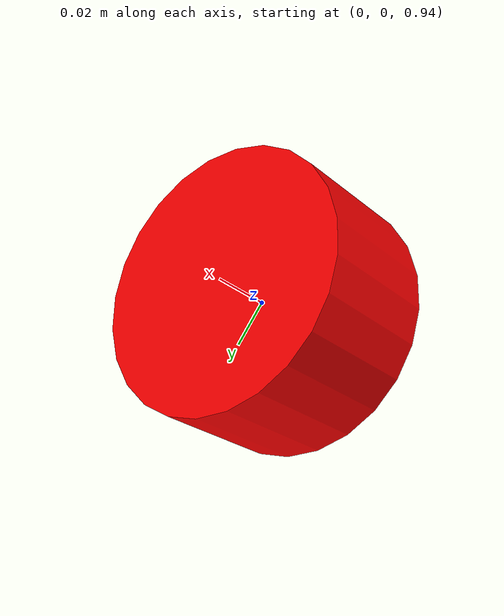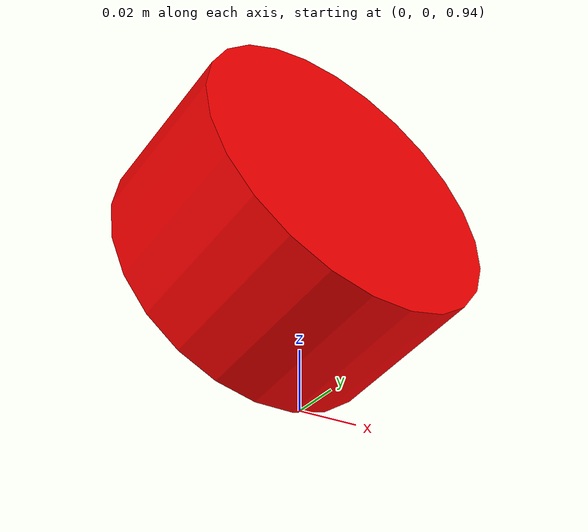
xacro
<?xml version="1.0"?>
<robot xmlns:xacro="http://www.ros.org/wiki/xacro"  name="robot">

    <xacro:arg name="lidar_base_offset_z" default="1"/>

    <xacro:include filename="base_core.xacro" />

    <xacro:include filename="../lidar.xacro"/>

    <xacro:include filename="../imu.xacro" />

</robot>

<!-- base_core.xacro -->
<robot name="robot_core" xmlns:xacro="http://ros.org/wiki/xacro">

  <!-- Robot Base link -->
  <!-- The base link is empty because it can't have inertia parameters
   to run correctly in Gazebo and also because is a ROS standard to
   always have a 'base_link' -->
  <link name="world">
  </link>

  <link name="base_link">
  </link>

  <joint name="base_to_world_joint" type="fixed">
    <parent link="world"/>
    <child link="base_link"/>
    <origin xyz="0 0 0" rpy="0 0 0"/>
  </joint>

</robot>

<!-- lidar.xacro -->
<robot xmlns:xacro="http://www.ros.org/wiki/xacro" name="robot">

  <xacro:property name="lidar_model" value="ouster-os0"/>
  <xacro:arg name="lidar_base_offset_z" default="0.205"/>
  <xacro:arg name="lidar_inclination" default="${pi/4}"/>

  <xacro:macro name="cylinder_inertia" params="m r h">
    <inertial>
      <origin xyz="0 0 0" rpy="${pi/2} 0 0"/>
      <mass value="${m}"/>
      <inertia
        ixx="${(m/12)*(3*r*r + h*h)}"
        ixy="0" ixz="0"
        iyy="${(m/12)*(3*r*r + h*h)}"
        iyz="0"
        izz="${(m/2)*(r*r)}"/>
    </inertial>
  </xacro:macro>

  <xacro:macro name="lidar_parameters" params="samp res min_ang max_ang">
    <samples>${samp}</samples>
    <resolution>${res}</resolution>
    <min_angle>${min_ang}</min_angle>
    <max_angle>${max_ang}</max_angle>
  </xacro:macro>

  <joint name="lidar_base_joint" type="fixed">
    <parent link="base_link"/>
    <child link="lidar_link"/>
    <origin xyz="0 0 $(arg lidar_base_offset_z)" rpy="0 $(arg lidar_inclination) 0"/>
  </joint>

  <link name="lidar_link">
    <visual>
      <origin xyz="0 0 0" rpy="0 0 0"/>
      <geometry>
        <cylinder length="0.05" radius="0.05"/>
      </geometry>
      <material name="red">
        <color rgba="1 0 0 1.0"/>
      </material>
    </visual>
    <collision>
      <geometry>
        <cylinder length="0.05" radius="0.05"/>
      </geometry>
    </collision>
    <xacro:cylinder_inertia m="0.1" r="0.05" h="0.05"/>
  </link>

  <gazebo>
    <plugin filename="gz-sim-sensors-system" name="gz::sim::systems::Sensors">
      <render_engine>ogre2</render_engine>
    </plugin>
  </gazebo>

  <gazebo reference="lidar_link">
    <sensor name="gpu_lidar" type="gpu_lidar">
      <topic>/lidar</topic>
      <gz_frame_id>lidar_link</gz_frame_id>
      <update_rate>0.25</update_rate>

      <lidar>
        <scan>
          <horizontal>
            <xacro:if value="${lidar_model == 'ouster-os0'}">
              <!-- Set 'samp'=1024 for a real Ouster Lidar parameter, it was set to 64 to make the simulation run faster -->
              <xacro:lidar_parameters samp="250" res="1" min_ang="${-pi*2}" max_ang="${pi*2}"/>
            </xacro:if>
          </horizontal>
          <vertical>
            <xacro:if value="${lidar_model == 'ouster-os0'}">
              <xacro:lidar_parameters samp="32" res="1" min_ang="${-pi/4}" max_ang="${pi/4}"/>
            </xacro:if>
          </vertical>
        </scan>
        <range>
          <min>0.25</min> <!-- Min distance in meters -->
          <max>100</max> <!-- Max distance in meters -->
          <resolution>0.01</resolution>
        </range>
      </lidar>

      <always_on>true</always_on>
      <visualize>false</visualize>
    </sensor>
  </gazebo>

</robot>

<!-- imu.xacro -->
<robot xmlns:xacro="http://www.ros.org/wiki/xacro" name="robot">

  <joint name="imu_joint" type="fixed">
    <origin rpy="0 3.141592653589793 0" xyz="0 0 0"/>
    <parent link="base_link"/>
    <child link="imu_link"/>
  </joint>

  <link name="imu_link">
    <inertial>
      <origin xyz="0 0 0"/>
      <mass value="0.005"/>
      <inertia ixx="1.67e-8" ixy="0" ixz="0" iyy="1.67e-8" iyz="0" izz="1.67e-8"/>
    </inertial>
  </link>

  <gazebo reference="imu_link">
    <plugin name="gz::sim::systems::Imu" filename="gz-sim-imu-system">
      <ros>
        <remapping>imu:=/imu</remapping>
      </ros>
      <frame_id>base_link</frame_id>
      <update_rate>200</update_rate>
      <always_on>true</always_on>
      <visualize>true</visualize>
      <orientation_reference_frame>world</orientation_reference_frame>
      <noise>
        <angular_velocity>
          <mean>0.0</mean>
          <stddev>0.0</stddev>
        </angular_velocity>
        <linear_acceleration>
          <mean>0.0</mean>
          <stddev>0.0</stddev>
        </linear_acceleration>
      </noise>
    </plugin>
  </gazebo>

</robot>
